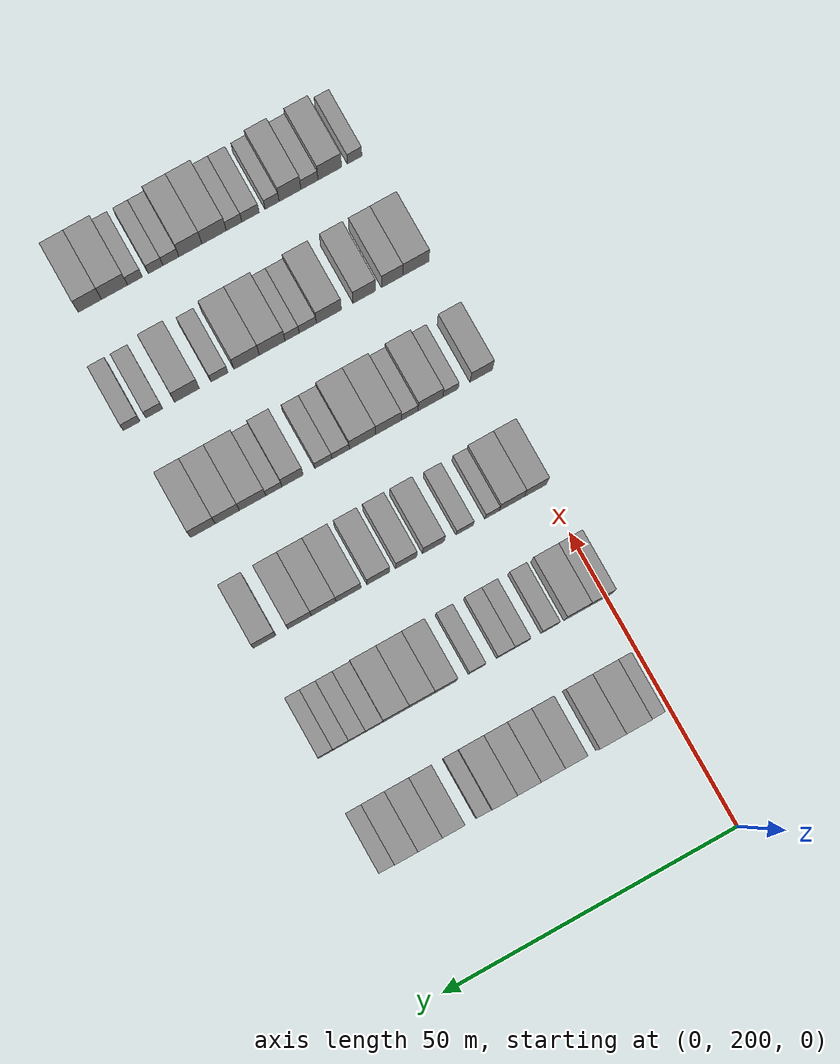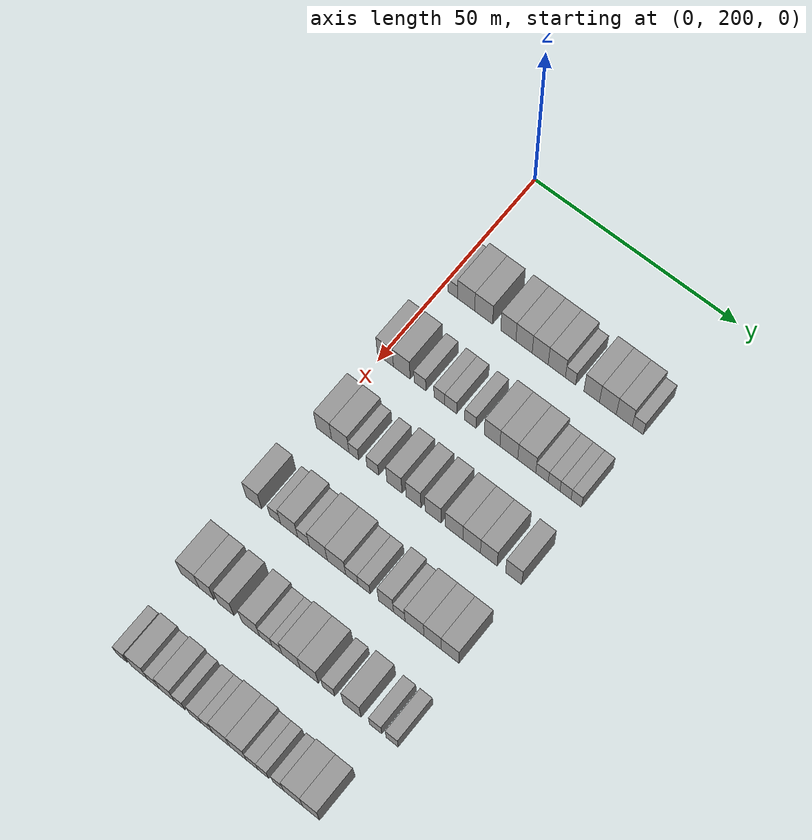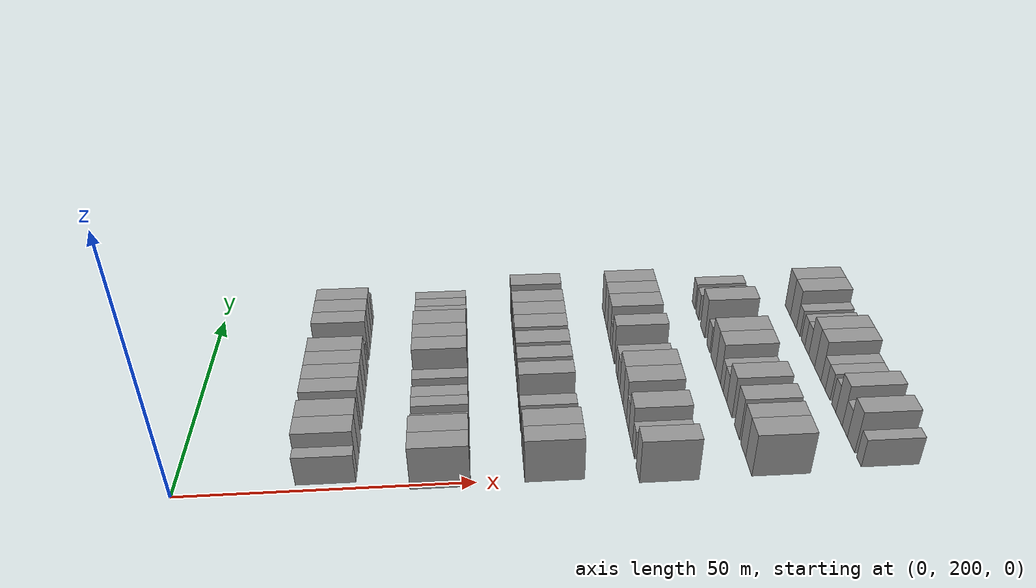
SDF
<sdf version="1.6">
 <world name="default">
  <model name="building_133">
   <static>1</static>
   <pose>25.0000 202.6711 0 0.000000 0.000000 0.000000</pose>
   <link name="link">
    <pose>0 0 3.00 0 0 0</pose>
    <collision name="collision"><geometry><box><size>10.0000 2.4883 6.0000</size></box></geometry></collision>
    <visual name="visual">
     <cast_shadows>0</cast_shadows>
     <geometry><box><size>10.0000 2.4883 6.0000</size></box></geometry>
     <material>
      <script>
       <uri>model://grey_wall/materials/scripts</uri>
       <uri>model://grey_wall/materials/textures</uri>
       <name>vrc/grey_wall</name>
      </script>
     </material>
    </visual>
   </link>
  </model>
  <model name="building_134">
   <static>1</static>
   <pose>25.0000 206.0773 0 0.000000 0.000000 0.000000</pose>
   <link name="link">
    <pose>0 0 4.50 0 0 0</pose>
    <collision name="collision"><geometry><box><size>10.0000 4.3241 9.0000</size></box></geometry></collision>
    <visual name="visual">
     <cast_shadows>0</cast_shadows>
     <geometry><box><size>10.0000 4.3241 9.0000</size></box></geometry>
     <material>
      <script>
       <uri>model://grey_wall/materials/scripts</uri>
       <uri>model://grey_wall/materials/textures</uri>
       <name>vrc/grey_wall</name>
      </script>
     </material>
    </visual>
   </link>
  </model>
  <model name="building_135">
   <static>1</static>
   <pose>25.0000 210.4620 0 0.000000 0.000000 0.000000</pose>
   <link name="link">
    <pose>0 0 4.50 0 0 0</pose>
    <collision name="collision"><geometry><box><size>10.0000 4.4454 9.0000</size></box></geometry></collision>
    <visual name="visual">
     <cast_shadows>0</cast_shadows>
     <geometry><box><size>10.0000 4.4454 9.0000</size></box></geometry>
     <material>
      <script>
       <uri>model://grey_wall/materials/scripts</uri>
       <uri>model://grey_wall/materials/textures</uri>
       <name>vrc/grey_wall</name>
      </script>
     </material>
    </visual>
   </link>
  </model>
  <model name="building_136">
   <static>1</static>
   <pose>25.0000 216.5590 0 0.000000 0.000000 0.000000</pose>
   <link name="link">
    <pose>0 0 4.50 0 0 0</pose>
    <collision name="collision"><geometry><box><size>10.0000 3.7486 9.0000</size></box></geometry></collision>
    <visual name="visual">
     <cast_shadows>0</cast_shadows>
     <geometry><box><size>10.0000 3.7486 9.0000</size></box></geometry>
     <material>
      <script>
       <uri>model://grey_wall/materials/scripts</uri>
       <uri>model://grey_wall/materials/textures</uri>
       <name>vrc/grey_wall</name>
      </script>
     </material>
    </visual>
   </link>
  </model>
  <model name="building_137">
   <static>1</static>
   <pose>25.0000 220.4509 0 0.000000 0.000000 0.000000</pose>
   <link name="link">
    <pose>0 0 4.50 0 0 0</pose>
    <collision name="collision"><geometry><box><size>10.0000 4.0350 9.0000</size></box></geometry></collision>
    <visual name="visual">
     <cast_shadows>0</cast_shadows>
     <geometry><box><size>10.0000 4.0350 9.0000</size></box></geometry>
     <material>
      <script>
       <uri>model://grey_wall/materials/scripts</uri>
       <uri>model://grey_wall/materials/textures</uri>
       <name>vrc/grey_wall</name>
      </script>
     </material>
    </visual>
   </link>
  </model>
  <model name="building_138">
   <static>1</static>
   <pose>25.0000 224.4323 0 0.000000 0.000000 0.000000</pose>
   <link name="link">
    <pose>0 0 4.50 0 0 0</pose>
    <collision name="collision"><geometry><box><size>10.0000 3.9277 9.0000</size></box></geometry></collision>
    <visual name="visual">
     <cast_shadows>0</cast_shadows>
     <geometry><box><size>10.0000 3.9277 9.0000</size></box></geometry>
     <material>
      <script>
       <uri>model://grey_wall/materials/scripts</uri>
       <uri>model://grey_wall/materials/textures</uri>
       <name>vrc/grey_wall</name>
      </script>
     </material>
    </visual>
   </link>
  </model>
  <model name="building_139">
   <static>1</static>
   <pose>25.0000 228.5073 0 0.000000 0.000000 0.000000</pose>
   <link name="link">
    <pose>0 0 4.50 0 0 0</pose>
    <collision name="collision"><geometry><box><size>10.0000 4.2223 9.0000</size></box></geometry></collision>
    <visual name="visual">
     <cast_shadows>0</cast_shadows>
     <geometry><box><size>10.0000 4.2223 9.0000</size></box></geometry>
     <material>
      <script>
       <uri>model://grey_wall/materials/scripts</uri>
       <uri>model://grey_wall/materials/textures</uri>
       <name>vrc/grey_wall</name>
      </script>
     </material>
    </visual>
   </link>
  </model>
  <model name="building_140">
   <static>1</static>
   <pose>25.0000 231.8715 0 0.000000 0.000000 0.000000</pose>
   <link name="link">
    <pose>0 0 3.00 0 0 0</pose>
    <collision name="collision"><geometry><box><size>10.0000 2.5061 6.0000</size></box></geometry></collision>
    <visual name="visual">
     <cast_shadows>0</cast_shadows>
     <geometry><box><size>10.0000 2.5061 6.0000</size></box></geometry>
     <material>
      <script>
       <uri>model://grey_wall/materials/scripts</uri>
       <uri>model://grey_wall/materials/textures</uri>
       <name>vrc/grey_wall</name>
      </script>
     </material>
    </visual>
   </link>
  </model>
  <model name="building_141">
   <static>1</static>
   <pose>25.0000 237.0050 0 0.000000 0.000000 0.000000</pose>
   <link name="link">
    <pose>0 0 4.50 0 0 0</pose>
    <collision name="collision"><geometry><box><size>10.0000 3.7610 9.0000</size></box></geometry></collision>
    <visual name="visual">
     <cast_shadows>0</cast_shadows>
     <geometry><box><size>10.0000 3.7610 9.0000</size></box></geometry>
     <material>
      <script>
       <uri>model://grey_wall/materials/scripts</uri>
       <uri>model://grey_wall/materials/textures</uri>
       <name>vrc/grey_wall</name>
      </script>
     </material>
    </visual>
   </link>
  </model>
  <model name="building_142">
   <static>1</static>
   <pose>25.0000 240.9194 0 0.000000 0.000000 0.000000</pose>
   <link name="link">
    <pose>0 0 4.50 0 0 0</pose>
    <collision name="collision"><geometry><box><size>10.0000 4.0678 9.0000</size></box></geometry></collision>
    <visual name="visual">
     <cast_shadows>0</cast_shadows>
     <geometry><box><size>10.0000 4.0678 9.0000</size></box></geometry>
     <material>
      <script>
       <uri>model://grey_wall/materials/scripts</uri>
       <uri>model://grey_wall/materials/textures</uri>
       <name>vrc/grey_wall</name>
      </script>
     </material>
    </visual>
   </link>
  </model>
  <model name="building_143">
   <static>1</static>
   <pose>25.0000 244.8892 0 0.000000 0.000000 0.000000</pose>
   <link name="link">
    <pose>0 0 4.50 0 0 0</pose>
    <collision name="collision"><geometry><box><size>10.0000 3.8719 9.0000</size></box></geometry></collision>
    <visual name="visual">
     <cast_shadows>0</cast_shadows>
     <geometry><box><size>10.0000 3.8719 9.0000</size></box></geometry>
     <material>
      <script>
       <uri>model://grey_wall/materials/scripts</uri>
       <uri>model://grey_wall/materials/textures</uri>
       <name>vrc/grey_wall</name>
      </script>
     </material>
    </visual>
   </link>
  </model>
  <model name="building_144">
   <static>1</static>
   <pose>25.0000 248.1427 0 0.000000 0.000000 0.000000</pose>
   <link name="link">
    <pose>0 0 3.00 0 0 0</pose>
    <collision name="collision"><geometry><box><size>10.0000 2.6350 6.0000</size></box></geometry></collision>
    <visual name="visual">
     <cast_shadows>0</cast_shadows>
     <geometry><box><size>10.0000 2.6350 6.0000</size></box></geometry>
     <material>
      <script>
       <uri>model://grey_wall/materials/scripts</uri>
       <uri>model://grey_wall/materials/textures</uri>
       <name>vrc/grey_wall</name>
      </script>
     </material>
    </visual>
   </link>
  </model>
  <model name="building_303">
   <static>1</static>
   <pose>44.0000 201.1079 0 0.000000 0.000000 0.000000</pose>
   <link name="link">
    <pose>0 0 4.50 0 0 0</pose>
    <collision name="collision"><geometry><box><size>10.0000 4.0124 9.0000</size></box></geometry></collision>
    <visual name="visual">
     <cast_shadows>0</cast_shadows>
     <geometry><box><size>10.0000 4.0124 9.0000</size></box></geometry>
     <material>
      <script>
       <uri>model://grey_wall/materials/scripts</uri>
       <uri>model://grey_wall/materials/textures</uri>
       <name>vrc/grey_wall</name>
      </script>
     </material>
    </visual>
   </link>
  </model>
  <model name="building_304">
   <static>1</static>
   <pose>44.0000 205.2079 0 0.000000 0.000000 0.000000</pose>
   <link name="link">
    <pose>0 0 4.50 0 0 0</pose>
    <collision name="collision"><geometry><box><size>10.0000 4.1876 9.0000</size></box></geometry></collision>
    <visual name="visual">
     <cast_shadows>0</cast_shadows>
     <geometry><box><size>10.0000 4.1876 9.0000</size></box></geometry>
     <material>
      <script>
       <uri>model://grey_wall/materials/scripts</uri>
       <uri>model://grey_wall/materials/textures</uri>
       <name>vrc/grey_wall</name>
      </script>
     </material>
    </visual>
   </link>
  </model>
  <model name="building_305">
   <static>1</static>
   <pose>44.0000 209.7599 0 0.000000 0.000000 0.000000</pose>
   <link name="link">
    <pose>0 0 3.00 0 0 0</pose>
    <collision name="collision"><geometry><box><size>10.0000 2.9164 6.0000</size></box></geometry></collision>
    <visual name="visual">
     <cast_shadows>0</cast_shadows>
     <geometry><box><size>10.0000 2.9164 6.0000</size></box></geometry>
     <material>
      <script>
       <uri>model://grey_wall/materials/scripts</uri>
       <uri>model://grey_wall/materials/textures</uri>
       <name>vrc/grey_wall</name>
      </script>
     </material>
    </visual>
   </link>
  </model>
  <model name="building_306">
   <static>1</static>
   <pose>44.0000 214.5501 0 0.000000 0.000000 0.000000</pose>
   <link name="link">
    <pose>0 0 3.00 0 0 0</pose>
    <collision name="collision"><geometry><box><size>10.0000 2.6641 6.0000</size></box></geometry></collision>
    <visual name="visual">
     <cast_shadows>0</cast_shadows>
     <geometry><box><size>10.0000 2.6641 6.0000</size></box></geometry>
     <material>
      <script>
       <uri>model://grey_wall/materials/scripts</uri>
       <uri>model://grey_wall/materials/textures</uri>
       <name>vrc/grey_wall</name>
      </script>
     </material>
    </visual>
   </link>
  </model>
  <model name="building_307">
   <static>1</static>
   <pose>44.0000 217.3388 0 0.000000 0.000000 0.000000</pose>
   <link name="link">
    <pose>0 0 3.00 0 0 0</pose>
    <collision name="collision"><geometry><box><size>10.0000 2.9133 6.0000</size></box></geometry></collision>
    <visual name="visual">
     <cast_shadows>0</cast_shadows>
     <geometry><box><size>10.0000 2.9133 6.0000</size></box></geometry>
     <material>
      <script>
       <uri>model://grey_wall/materials/scripts</uri>
       <uri>model://grey_wall/materials/textures</uri>
       <name>vrc/grey_wall</name>
      </script>
     </material>
    </visual>
   </link>
  </model>
  <model name="building_308">
   <static>1</static>
   <pose>44.0000 222.1961 0 0.000000 0.000000 0.000000</pose>
   <link name="link">
    <pose>0 0 3.00 0 0 0</pose>
    <collision name="collision"><geometry><box><size>10.0000 2.8013 6.0000</size></box></geometry></collision>
    <visual name="visual">
     <cast_shadows>0</cast_shadows>
     <geometry><box><size>10.0000 2.8013 6.0000</size></box></geometry>
     <material>
      <script>
       <uri>model://grey_wall/materials/scripts</uri>
       <uri>model://grey_wall/materials/textures</uri>
       <name>vrc/grey_wall</name>
      </script>
     </material>
    </visual>
   </link>
  </model>
  <model name="building_309">
   <static>1</static>
   <pose>44.0000 227.5003 0 0.000000 0.000000 0.000000</pose>
   <link name="link">
    <pose>0 0 4.50 0 0 0</pose>
    <collision name="collision"><geometry><box><size>10.0000 3.8072 9.0000</size></box></geometry></collision>
    <visual name="visual">
     <cast_shadows>0</cast_shadows>
     <geometry><box><size>10.0000 3.8072 9.0000</size></box></geometry>
     <material>
      <script>
       <uri>model://grey_wall/materials/scripts</uri>
       <uri>model://grey_wall/materials/textures</uri>
       <name>vrc/grey_wall</name>
      </script>
     </material>
    </visual>
   </link>
  </model>
  <model name="building_310">
   <static>1</static>
   <pose>44.0000 231.5587 0 0.000000 0.000000 0.000000</pose>
   <link name="link">
    <pose>0 0 4.50 0 0 0</pose>
    <collision name="collision"><geometry><box><size>10.0000 4.3096 9.0000</size></box></geometry></collision>
    <visual name="visual">
     <cast_shadows>0</cast_shadows>
     <geometry><box><size>10.0000 4.3096 9.0000</size></box></geometry>
     <material>
      <script>
       <uri>model://grey_wall/materials/scripts</uri>
       <uri>model://grey_wall/materials/textures</uri>
       <name>vrc/grey_wall</name>
      </script>
     </material>
    </visual>
   </link>
  </model>
  <model name="building_311">
   <static>1</static>
   <pose>44.0000 235.8944 0 0.000000 0.000000 0.000000</pose>
   <link name="link">
    <pose>0 0 4.50 0 0 0</pose>
    <collision name="collision"><geometry><box><size>10.0000 4.3618 9.0000</size></box></geometry></collision>
    <visual name="visual">
     <cast_shadows>0</cast_shadows>
     <geometry><box><size>10.0000 4.3618 9.0000</size></box></geometry>
     <material>
      <script>
       <uri>model://grey_wall/materials/scripts</uri>
       <uri>model://grey_wall/materials/textures</uri>
       <name>vrc/grey_wall</name>
      </script>
     </material>
    </visual>
   </link>
  </model>
  <model name="building_312">
   <static>1</static>
   <pose>44.0000 239.5666 0 0.000000 0.000000 0.000000</pose>
   <link name="link">
    <pose>0 0 3.00 0 0 0</pose>
    <collision name="collision"><geometry><box><size>10.0000 2.9827 6.0000</size></box></geometry></collision>
    <visual name="visual">
     <cast_shadows>0</cast_shadows>
     <geometry><box><size>10.0000 2.9827 6.0000</size></box></geometry>
     <material>
      <script>
       <uri>model://grey_wall/materials/scripts</uri>
       <uri>model://grey_wall/materials/textures</uri>
       <name>vrc/grey_wall</name>
      </script>
     </material>
    </visual>
   </link>
  </model>
  <model name="building_313">
   <static>1</static>
   <pose>44.0000 242.4702 0 0.000000 0.000000 0.000000</pose>
   <link name="link">
    <pose>0 0 3.00 0 0 0</pose>
    <collision name="collision"><geometry><box><size>10.0000 2.8244 6.0000</size></box></geometry></collision>
    <visual name="visual">
     <cast_shadows>0</cast_shadows>
     <geometry><box><size>10.0000 2.8244 6.0000</size></box></geometry>
     <material>
      <script>
       <uri>model://grey_wall/materials/scripts</uri>
       <uri>model://grey_wall/materials/textures</uri>
       <name>vrc/grey_wall</name>
      </script>
     </material>
    </visual>
   </link>
  </model>
  <model name="building_314">
   <static>1</static>
   <pose>44.0000 245.2098 0 0.000000 0.000000 0.000000</pose>
   <link name="link">
    <pose>0 0 3.00 0 0 0</pose>
    <collision name="collision"><geometry><box><size>10.0000 2.6549 6.0000</size></box></geometry></collision>
    <visual name="visual">
     <cast_shadows>0</cast_shadows>
     <geometry><box><size>10.0000 2.6549 6.0000</size></box></geometry>
     <material>
      <script>
       <uri>model://grey_wall/materials/scripts</uri>
       <uri>model://grey_wall/materials/textures</uri>
       <name>vrc/grey_wall</name>
      </script>
     </material>
    </visual>
   </link>
  </model>
  <model name="building_315">
   <static>1</static>
   <pose>44.0000 247.7733 0 0.000000 0.000000 0.000000</pose>
   <link name="link">
    <pose>0 0 3.00 0 0 0</pose>
    <collision name="collision"><geometry><box><size>10.0000 2.4720 6.0000</size></box></geometry></collision>
    <visual name="visual">
     <cast_shadows>0</cast_shadows>
     <geometry><box><size>10.0000 2.4720 6.0000</size></box></geometry>
     <material>
      <script>
       <uri>model://grey_wall/materials/scripts</uri>
       <uri>model://grey_wall/materials/textures</uri>
       <name>vrc/grey_wall</name>
      </script>
     </material>
    </visual>
   </link>
  </model>
  <model name="building_486">
   <static>1</static>
   <pose>63.0000 201.4078 0 0.000000 0.000000 0.000000</pose>
   <link name="link">
    <pose>0 0 4.50 0 0 0</pose>
    <collision name="collision"><geometry><box><size>10.0000 3.8043 9.0000</size></box></geometry></collision>
    <visual name="visual">
     <cast_shadows>0</cast_shadows>
     <geometry><box><size>10.0000 3.8043 9.0000</size></box></geometry>
     <material>
      <script>
       <uri>model://grey_wall/materials/scripts</uri>
       <uri>model://grey_wall/materials/textures</uri>
       <name>vrc/grey_wall</name>
      </script>
     </material>
    </visual>
   </link>
  </model>
  <model name="building_487">
   <static>1</static>
   <pose>63.0000 205.4745 0 0.000000 0.000000 0.000000</pose>
   <link name="link">
    <pose>0 0 4.50 0 0 0</pose>
    <collision name="collision"><geometry><box><size>10.0000 4.3293 9.0000</size></box></geometry></collision>
    <visual name="visual">
     <cast_shadows>0</cast_shadows>
     <geometry><box><size>10.0000 4.3293 9.0000</size></box></geometry>
     <material>
      <script>
       <uri>model://grey_wall/materials/scripts</uri>
       <uri>model://grey_wall/materials/textures</uri>
       <name>vrc/grey_wall</name>
      </script>
     </material>
    </visual>
   </link>
  </model>
  <model name="building_488">
   <static>1</static>
   <pose>63.0000 208.8492 0 0.000000 0.000000 0.000000</pose>
   <link name="link">
    <pose>0 0 3.00 0 0 0</pose>
    <collision name="collision"><geometry><box><size>10.0000 2.4201 6.0000</size></box></geometry></collision>
    <visual name="visual">
     <cast_shadows>0</cast_shadows>
     <geometry><box><size>10.0000 2.4201 6.0000</size></box></geometry>
     <material>
      <script>
       <uri>model://grey_wall/materials/scripts</uri>
       <uri>model://grey_wall/materials/textures</uri>
       <name>vrc/grey_wall</name>
      </script>
     </material>
    </visual>
   </link>
  </model>
  <model name="building_489">
   <static>1</static>
   <pose>63.0000 213.5295 0 0.000000 0.000000 0.000000</pose>
   <link name="link">
    <pose>0 0 3.00 0 0 0</pose>
    <collision name="collision"><geometry><box><size>10.0000 2.9405 6.0000</size></box></geometry></collision>
    <visual name="visual">
     <cast_shadows>0</cast_shadows>
     <geometry><box><size>10.0000 2.9405 6.0000</size></box></geometry>
     <material>
      <script>
       <uri>model://grey_wall/materials/scripts</uri>
       <uri>model://grey_wall/materials/textures</uri>
       <name>vrc/grey_wall</name>
      </script>
     </material>
    </visual>
   </link>
  </model>
  <model name="building_490">
   <static>1</static>
   <pose>63.0000 218.8588 0 0.000000 0.000000 0.000000</pose>
   <link name="link">
    <pose>0 0 4.50 0 0 0</pose>
    <collision name="collision"><geometry><box><size>10.0000 3.7180 9.0000</size></box></geometry></collision>
    <visual name="visual">
     <cast_shadows>0</cast_shadows>
     <geometry><box><size>10.0000 3.7180 9.0000</size></box></geometry>
     <material>
      <script>
       <uri>model://grey_wall/materials/scripts</uri>
       <uri>model://grey_wall/materials/textures</uri>
       <name>vrc/grey_wall</name>
      </script>
     </material>
    </visual>
   </link>
  </model>
  <model name="building_491">
   <static>1</static>
   <pose>63.0000 223.5201 0 0.000000 0.000000 0.000000</pose>
   <link name="link">
    <pose>0 0 4.50 0 0 0</pose>
    <collision name="collision"><geometry><box><size>10.0000 3.6046 9.0000</size></box></geometry></collision>
    <visual name="visual">
     <cast_shadows>0</cast_shadows>
     <geometry><box><size>10.0000 3.6046 9.0000</size></box></geometry>
     <material>
      <script>
       <uri>model://grey_wall/materials/scripts</uri>
       <uri>model://grey_wall/materials/textures</uri>
       <name>vrc/grey_wall</name>
      </script>
     </material>
    </visual>
   </link>
  </model>
  <model name="building_492">
   <static>1</static>
   <pose>63.0000 228.2606 0 0.000000 0.000000 0.000000</pose>
   <link name="link">
    <pose>0 0 4.50 0 0 0</pose>
    <collision name="collision"><geometry><box><size>10.0000 3.8765 9.0000</size></box></geometry></collision>
    <visual name="visual">
     <cast_shadows>0</cast_shadows>
     <geometry><box><size>10.0000 3.8765 9.0000</size></box></geometry>
     <material>
      <script>
       <uri>model://grey_wall/materials/scripts</uri>
       <uri>model://grey_wall/materials/textures</uri>
       <name>vrc/grey_wall</name>
      </script>
     </material>
    </visual>
   </link>
  </model>
  <model name="building_493">
   <static>1</static>
   <pose>63.0000 233.3235 0 0.000000 0.000000 0.000000</pose>
   <link name="link">
    <pose>0 0 4.50 0 0 0</pose>
    <collision name="collision"><geometry><box><size>10.0000 4.2493 9.0000</size></box></geometry></collision>
    <visual name="visual">
     <cast_shadows>0</cast_shadows>
     <geometry><box><size>10.0000 4.2493 9.0000</size></box></geometry>
     <material>
      <script>
       <uri>model://grey_wall/materials/scripts</uri>
       <uri>model://grey_wall/materials/textures</uri>
       <name>vrc/grey_wall</name>
      </script>
     </material>
    </visual>
   </link>
  </model>
  <model name="building_494">
   <static>1</static>
   <pose>63.0000 237.5586 0 0.000000 0.000000 0.000000</pose>
   <link name="link">
    <pose>0 0 4.50 0 0 0</pose>
    <collision name="collision"><geometry><box><size>10.0000 4.2208 9.0000</size></box></geometry></collision>
    <visual name="visual">
     <cast_shadows>0</cast_shadows>
     <geometry><box><size>10.0000 4.2208 9.0000</size></box></geometry>
     <material>
      <script>
       <uri>model://grey_wall/materials/scripts</uri>
       <uri>model://grey_wall/materials/textures</uri>
       <name>vrc/grey_wall</name>
      </script>
     </material>
    </visual>
   </link>
  </model>
  <model name="building_495">
   <static>1</static>
   <pose>63.0000 241.6664 0 0.000000 0.000000 0.000000</pose>
   <link name="link">
    <pose>0 0 4.50 0 0 0</pose>
    <collision name="collision"><geometry><box><size>10.0000 3.9949 9.0000</size></box></geometry></collision>
    <visual name="visual">
     <cast_shadows>0</cast_shadows>
     <geometry><box><size>10.0000 3.9949 9.0000</size></box></geometry>
     <material>
      <script>
       <uri>model://grey_wall/materials/scripts</uri>
       <uri>model://grey_wall/materials/textures</uri>
       <name>vrc/grey_wall</name>
      </script>
     </material>
    </visual>
   </link>
  </model>
  <model name="building_496">
   <static>1</static>
   <pose>63.0000 247.5742 0 0.000000 0.000000 0.000000</pose>
   <link name="link">
    <pose>0 0 4.50 0 0 0</pose>
    <collision name="collision"><geometry><box><size>10.0000 3.8206 9.0000</size></box></geometry></collision>
    <visual name="visual">
     <cast_shadows>0</cast_shadows>
     <geometry><box><size>10.0000 3.8206 9.0000</size></box></geometry>
     <material>
      <script>
       <uri>model://grey_wall/materials/scripts</uri>
       <uri>model://grey_wall/materials/textures</uri>
       <name>vrc/grey_wall</name>
      </script>
     </material>
    </visual>
   </link>
  </model>
  <model name="building_663">
   <static>1</static>
   <pose>82.0000 199.9631 0 0.000000 0.000000 0.000000</pose>
   <link name="link">
    <pose>0 0 4.50 0 0 0</pose>
    <collision name="collision"><geometry><box><size>10.0000 3.8463 9.0000</size></box></geometry></collision>
    <visual name="visual">
     <cast_shadows>0</cast_shadows>
     <geometry><box><size>10.0000 3.8463 9.0000</size></box></geometry>
     <material>
      <script>
       <uri>model://grey_wall/materials/scripts</uri>
       <uri>model://grey_wall/materials/textures</uri>
       <name>vrc/grey_wall</name>
      </script>
     </material>
    </visual>
   </link>
  </model>
  <model name="building_664">
   <static>1</static>
   <pose>82.0000 205.2267 0 0.000000 0.000000 0.000000</pose>
   <link name="link">
    <pose>0 0 3.00 0 0 0</pose>
    <collision name="collision"><geometry><box><size>10.0000 2.6810 6.0000</size></box></geometry></collision>
    <visual name="visual">
     <cast_shadows>0</cast_shadows>
     <geometry><box><size>10.0000 2.6810 6.0000</size></box></geometry>
     <material>
      <script>
       <uri>model://grey_wall/materials/scripts</uri>
       <uri>model://grey_wall/materials/textures</uri>
       <name>vrc/grey_wall</name>
      </script>
     </material>
    </visual>
   </link>
  </model>
  <model name="building_665">
   <static>1</static>
   <pose>82.0000 208.6943 0 0.000000 0.000000 0.000000</pose>
   <link name="link">
    <pose>0 0 4.50 0 0 0</pose>
    <collision name="collision"><geometry><box><size>10.0000 4.2542 9.0000</size></box></geometry></collision>
    <visual name="visual">
     <cast_shadows>0</cast_shadows>
     <geometry><box><size>10.0000 4.2542 9.0000</size></box></geometry>
     <material>
      <script>
       <uri>model://grey_wall/materials/scripts</uri>
       <uri>model://grey_wall/materials/textures</uri>
       <name>vrc/grey_wall</name>
      </script>
     </material>
    </visual>
   </link>
  </model>
  <model name="building_666">
   <static>1</static>
   <pose>82.0000 212.2488 0 0.000000 0.000000 0.000000</pose>
   <link name="link">
    <pose>0 0 3.00 0 0 0</pose>
    <collision name="collision"><geometry><box><size>10.0000 2.8547 6.0000</size></box></geometry></collision>
    <visual name="visual">
     <cast_shadows>0</cast_shadows>
     <geometry><box><size>10.0000 2.8547 6.0000</size></box></geometry>
     <material>
      <script>
       <uri>model://grey_wall/materials/scripts</uri>
       <uri>model://grey_wall/materials/textures</uri>
       <name>vrc/grey_wall</name>
      </script>
     </material>
    </visual>
   </link>
  </model>
  <model name="building_667">
   <static>1</static>
   <pose>82.0000 215.8715 0 0.000000 0.000000 0.000000</pose>
   <link name="link">
    <pose>0 0 4.50 0 0 0</pose>
    <collision name="collision"><geometry><box><size>10.0000 4.3908 9.0000</size></box></geometry></collision>
    <visual name="visual">
     <cast_shadows>0</cast_shadows>
     <geometry><box><size>10.0000 4.3908 9.0000</size></box></geometry>
     <material>
      <script>
       <uri>model://grey_wall/materials/scripts</uri>
       <uri>model://grey_wall/materials/textures</uri>
       <name>vrc/grey_wall</name>
      </script>
     </material>
    </visual>
   </link>
  </model>
  <model name="building_668">
   <static>1</static>
   <pose>82.0000 220.3164 0 0.000000 0.000000 0.000000</pose>
   <link name="link">
    <pose>0 0 4.50 0 0 0</pose>
    <collision name="collision"><geometry><box><size>10.0000 4.4990 9.0000</size></box></geometry></collision>
    <visual name="visual">
     <cast_shadows>0</cast_shadows>
     <geometry><box><size>10.0000 4.4990 9.0000</size></box></geometry>
     <material>
      <script>
       <uri>model://grey_wall/materials/scripts</uri>
       <uri>model://grey_wall/materials/textures</uri>
       <name>vrc/grey_wall</name>
      </script>
     </material>
    </visual>
   </link>
  </model>
  <model name="building_669">
   <static>1</static>
   <pose>82.0000 224.0597 0 0.000000 0.000000 0.000000</pose>
   <link name="link">
    <pose>0 0 3.00 0 0 0</pose>
    <collision name="collision"><geometry><box><size>10.0000 2.9876 6.0000</size></box></geometry></collision>
    <visual name="visual">
     <cast_shadows>0</cast_shadows>
     <geometry><box><size>10.0000 2.9876 6.0000</size></box></geometry>
     <material>
      <script>
       <uri>model://grey_wall/materials/scripts</uri>
       <uri>model://grey_wall/materials/textures</uri>
       <name>vrc/grey_wall</name>
      </script>
     </material>
    </visual>
   </link>
  </model>
  <model name="building_670">
   <static>1</static>
   <pose>82.0000 227.0129 0 0.000000 0.000000 0.000000</pose>
   <link name="link">
    <pose>0 0 3.00 0 0 0</pose>
    <collision name="collision"><geometry><box><size>10.0000 2.9188 6.0000</size></box></geometry></collision>
    <visual name="visual">
     <cast_shadows>0</cast_shadows>
     <geometry><box><size>10.0000 2.9188 6.0000</size></box></geometry>
     <material>
      <script>
       <uri>model://grey_wall/materials/scripts</uri>
       <uri>model://grey_wall/materials/textures</uri>
       <name>vrc/grey_wall</name>
      </script>
     </material>
    </visual>
   </link>
  </model>
  <model name="building_671">
   <static>1</static>
   <pose>82.0000 232.2809 0 0.000000 0.000000 0.000000</pose>
   <link name="link">
    <pose>0 0 4.50 0 0 0</pose>
    <collision name="collision"><geometry><box><size>10.0000 3.6173 9.0000</size></box></geometry></collision>
    <visual name="visual">
     <cast_shadows>0</cast_shadows>
     <geometry><box><size>10.0000 3.6173 9.0000</size></box></geometry>
     <material>
      <script>
       <uri>model://grey_wall/materials/scripts</uri>
       <uri>model://grey_wall/materials/textures</uri>
       <name>vrc/grey_wall</name>
      </script>
     </material>
    </visual>
   </link>
  </model>
  <model name="building_672">
   <static>1</static>
   <pose>82.0000 235.4722 0 0.000000 0.000000 0.000000</pose>
   <link name="link">
    <pose>0 0 3.00 0 0 0</pose>
    <collision name="collision"><geometry><box><size>10.0000 2.7652 6.0000</size></box></geometry></collision>
    <visual name="visual">
     <cast_shadows>0</cast_shadows>
     <geometry><box><size>10.0000 2.7652 6.0000</size></box></geometry>
     <material>
      <script>
       <uri>model://grey_wall/materials/scripts</uri>
       <uri>model://grey_wall/materials/textures</uri>
       <name>vrc/grey_wall</name>
      </script>
     </material>
    </visual>
   </link>
  </model>
  <model name="building_673">
   <static>1</static>
   <pose>82.0000 239.1030 0 0.000000 0.000000 0.000000</pose>
   <link name="link">
    <pose>0 0 4.50 0 0 0</pose>
    <collision name="collision"><geometry><box><size>10.0000 4.4964 9.0000</size></box></geometry></collision>
    <visual name="visual">
     <cast_shadows>0</cast_shadows>
     <geometry><box><size>10.0000 4.4964 9.0000</size></box></geometry>
     <material>
      <script>
       <uri>model://grey_wall/materials/scripts</uri>
       <uri>model://grey_wall/materials/textures</uri>
       <name>vrc/grey_wall</name>
      </script>
     </material>
    </visual>
   </link>
  </model>
  <model name="building_674">
   <static>1</static>
   <pose>82.0000 243.4031 0 0.000000 0.000000 0.000000</pose>
   <link name="link">
    <pose>0 0 4.50 0 0 0</pose>
    <collision name="collision"><geometry><box><size>10.0000 4.1038 9.0000</size></box></geometry></collision>
    <visual name="visual">
     <cast_shadows>0</cast_shadows>
     <geometry><box><size>10.0000 4.1038 9.0000</size></box></geometry>
     <material>
      <script>
       <uri>model://grey_wall/materials/scripts</uri>
       <uri>model://grey_wall/materials/textures</uri>
       <name>vrc/grey_wall</name>
      </script>
     </material>
    </visual>
   </link>
  </model>
  <model name="building_675">
   <static>1</static>
   <pose>82.0000 247.5528 0 0.000000 0.000000 0.000000</pose>
   <link name="link">
    <pose>0 0 4.50 0 0 0</pose>
    <collision name="collision"><geometry><box><size>10.0000 4.1956 9.0000</size></box></geometry></collision>
    <visual name="visual">
     <cast_shadows>0</cast_shadows>
     <geometry><box><size>10.0000 4.1956 9.0000</size></box></geometry>
     <material>
      <script>
       <uri>model://grey_wall/materials/scripts</uri>
       <uri>model://grey_wall/materials/textures</uri>
       <name>vrc/grey_wall</name>
      </script>
     </material>
    </visual>
   </link>
  </model>
  <model name="building_832">
   <static>1</static>
   <pose>101.0000 200.5146 0 0.000000 0.000000 0.000000</pose>
   <link name="link">
    <pose>0 0 4.50 0 0 0</pose>
    <collision name="collision"><geometry><box><size>10.0000 4.4824 9.0000</size></box></geometry></collision>
    <visual name="visual">
     <cast_shadows>0</cast_shadows>
     <geometry><box><size>10.0000 4.4824 9.0000</size></box></geometry>
     <material>
      <script>
       <uri>model://grey_wall/materials/scripts</uri>
       <uri>model://grey_wall/materials/textures</uri>
       <name>vrc/grey_wall</name>
      </script>
     </material>
    </visual>
   </link>
  </model>
  <model name="building_833">
   <static>1</static>
   <pose>101.0000 204.5877 0 0.000000 0.000000 0.000000</pose>
   <link name="link">
    <pose>0 0 4.50 0 0 0</pose>
    <collision name="collision"><geometry><box><size>10.0000 3.6638 9.0000</size></box></geometry></collision>
    <visual name="visual">
     <cast_shadows>0</cast_shadows>
     <geometry><box><size>10.0000 3.6638 9.0000</size></box></geometry>
     <material>
      <script>
       <uri>model://grey_wall/materials/scripts</uri>
       <uri>model://grey_wall/materials/textures</uri>
       <name>vrc/grey_wall</name>
      </script>
     </material>
    </visual>
   </link>
  </model>
  <model name="building_834">
   <static>1</static>
   <pose>101.0000 209.3695 0 0.000000 0.000000 0.000000</pose>
   <link name="link">
    <pose>0 0 4.50 0 0 0</pose>
    <collision name="collision"><geometry><box><size>10.0000 3.8999 9.0000</size></box></geometry></collision>
    <visual name="visual">
     <cast_shadows>0</cast_shadows>
     <geometry><box><size>10.0000 3.8999 9.0000</size></box></geometry>
     <material>
      <script>
       <uri>model://grey_wall/materials/scripts</uri>
       <uri>model://grey_wall/materials/textures</uri>
       <name>vrc/grey_wall</name>
      </script>
     </material>
    </visual>
   </link>
  </model>
  <model name="building_835">
   <static>1</static>
   <pose>101.0000 215.4580 0 0.000000 0.000000 0.000000</pose>
   <link name="link">
    <pose>0 0 4.50 0 0 0</pose>
    <collision name="collision"><geometry><box><size>10.0000 4.2771 9.0000</size></box></geometry></collision>
    <visual name="visual">
     <cast_shadows>0</cast_shadows>
     <geometry><box><size>10.0000 4.2771 9.0000</size></box></geometry>
     <material>
      <script>
       <uri>model://grey_wall/materials/scripts</uri>
       <uri>model://grey_wall/materials/textures</uri>
       <name>vrc/grey_wall</name>
      </script>
     </material>
    </visual>
   </link>
  </model>
  <model name="building_836">
   <static>1</static>
   <pose>101.0000 219.0809 0 0.000000 0.000000 0.000000</pose>
   <link name="link">
    <pose>0 0 3.00 0 0 0</pose>
    <collision name="collision"><geometry><box><size>10.0000 2.9687 6.0000</size></box></geometry></collision>
    <visual name="visual">
     <cast_shadows>0</cast_shadows>
     <geometry><box><size>10.0000 2.9687 6.0000</size></box></geometry>
     <material>
      <script>
       <uri>model://grey_wall/materials/scripts</uri>
       <uri>model://grey_wall/materials/textures</uri>
       <name>vrc/grey_wall</name>
      </script>
     </material>
    </visual>
   </link>
  </model>
  <model name="building_837">
   <static>1</static>
   <pose>101.0000 221.7885 0 0.000000 0.000000 0.000000</pose>
   <link name="link">
    <pose>0 0 3.00 0 0 0</pose>
    <collision name="collision"><geometry><box><size>10.0000 2.4465 6.0000</size></box></geometry></collision>
    <visual name="visual">
     <cast_shadows>0</cast_shadows>
     <geometry><box><size>10.0000 2.4465 6.0000</size></box></geometry>
     <material>
      <script>
       <uri>model://grey_wall/materials/scripts</uri>
       <uri>model://grey_wall/materials/textures</uri>
       <name>vrc/grey_wall</name>
      </script>
     </material>
    </visual>
   </link>
  </model>
  <model name="building_838">
   <static>1</static>
   <pose>101.0000 225.2068 0 0.000000 0.000000 0.000000</pose>
   <link name="link">
    <pose>0 0 4.50 0 0 0</pose>
    <collision name="collision"><geometry><box><size>10.0000 4.3901 9.0000</size></box></geometry></collision>
    <visual name="visual">
     <cast_shadows>0</cast_shadows>
     <geometry><box><size>10.0000 4.3901 9.0000</size></box></geometry>
     <material>
      <script>
       <uri>model://grey_wall/materials/scripts</uri>
       <uri>model://grey_wall/materials/textures</uri>
       <name>vrc/grey_wall</name>
      </script>
     </material>
    </visual>
   </link>
  </model>
  <model name="building_839">
   <static>1</static>
   <pose>101.0000 229.5811 0 0.000000 0.000000 0.000000</pose>
   <link name="link">
    <pose>0 0 4.50 0 0 0</pose>
    <collision name="collision"><geometry><box><size>10.0000 4.3585 9.0000</size></box></geometry></collision>
    <visual name="visual">
     <cast_shadows>0</cast_shadows>
     <geometry><box><size>10.0000 4.3585 9.0000</size></box></geometry>
     <material>
      <script>
       <uri>model://grey_wall/materials/scripts</uri>
       <uri>model://grey_wall/materials/textures</uri>
       <name>vrc/grey_wall</name>
      </script>
     </material>
    </visual>
   </link>
  </model>
  <model name="building_840">
   <static>1</static>
   <pose>101.0000 234.2176 0 0.000000 0.000000 0.000000</pose>
   <link name="link">
    <pose>0 0 3.00 0 0 0</pose>
    <collision name="collision"><geometry><box><size>10.0000 2.9144 6.0000</size></box></geometry></collision>
    <visual name="visual">
     <cast_shadows>0</cast_shadows>
     <geometry><box><size>10.0000 2.9144 6.0000</size></box></geometry>
     <material>
      <script>
       <uri>model://grey_wall/materials/scripts</uri>
       <uri>model://grey_wall/materials/textures</uri>
       <name>vrc/grey_wall</name>
      </script>
     </material>
    </visual>
   </link>
  </model>
  <model name="building_841">
   <static>1</static>
   <pose>101.0000 239.8007 0 0.000000 0.000000 0.000000</pose>
   <link name="link">
    <pose>0 0 4.50 0 0 0</pose>
    <collision name="collision"><geometry><box><size>10.0000 4.2518 9.0000</size></box></geometry></collision>
    <visual name="visual">
     <cast_shadows>0</cast_shadows>
     <geometry><box><size>10.0000 4.2518 9.0000</size></box></geometry>
     <material>
      <script>
       <uri>model://grey_wall/materials/scripts</uri>
       <uri>model://grey_wall/materials/textures</uri>
       <name>vrc/grey_wall</name>
      </script>
     </material>
    </visual>
   </link>
  </model>
  <model name="building_842">
   <static>1</static>
   <pose>101.0000 245.3694 0 0.000000 0.000000 0.000000</pose>
   <link name="link">
    <pose>0 0 3.00 0 0 0</pose>
    <collision name="collision"><geometry><box><size>10.0000 2.8856 6.0000</size></box></geometry></collision>
    <visual name="visual">
     <cast_shadows>0</cast_shadows>
     <geometry><box><size>10.0000 2.8856 6.0000</size></box></geometry>
     <material>
      <script>
       <uri>model://grey_wall/materials/scripts</uri>
       <uri>model://grey_wall/materials/textures</uri>
       <name>vrc/grey_wall</name>
      </script>
     </material>
    </visual>
   </link>
  </model>
  <model name="building_843">
   <static>1</static>
   <pose>101.0000 249.2357 0 0.000000 0.000000 0.000000</pose>
   <link name="link">
    <pose>0 0 3.00 0 0 0</pose>
    <collision name="collision"><geometry><box><size>10.0000 2.8469 6.0000</size></box></geometry></collision>
    <visual name="visual">
     <cast_shadows>0</cast_shadows>
     <geometry><box><size>10.0000 2.8469 6.0000</size></box></geometry>
     <material>
      <script>
       <uri>model://grey_wall/materials/scripts</uri>
       <uri>model://grey_wall/materials/textures</uri>
       <name>vrc/grey_wall</name>
      </script>
     </material>
    </visual>
   </link>
  </model>
  <model name="building_1013">
   <static>1</static>
   <pose>120.0000 200.4327 0 0.000000 0.000000 0.000000</pose>
   <link name="link">
    <pose>0 0 3.00 0 0 0</pose>
    <collision name="collision"><geometry><box><size>10.0000 2.4955 6.0000</size></box></geometry></collision>
    <visual name="visual">
     <cast_shadows>0</cast_shadows>
     <geometry><box><size>10.0000 2.4955 6.0000</size></box></geometry>
     <material>
      <script>
       <uri>model://grey_wall/materials/scripts</uri>
       <uri>model://grey_wall/materials/textures</uri>
       <name>vrc/grey_wall</name>
      </script>
     </material>
    </visual>
   </link>
  </model>
  <model name="building_1014">
   <static>1</static>
   <pose>120.0000 204.7116 0 0.000000 0.000000 0.000000</pose>
   <link name="link">
    <pose>0 0 4.50 0 0 0</pose>
    <collision name="collision"><geometry><box><size>10.0000 4.0623 9.0000</size></box></geometry></collision>
    <visual name="visual">
     <cast_shadows>0</cast_shadows>
     <geometry><box><size>10.0000 4.0623 9.0000</size></box></geometry>
     <material>
      <script>
       <uri>model://grey_wall/materials/scripts</uri>
       <uri>model://grey_wall/materials/textures</uri>
       <name>vrc/grey_wall</name>
      </script>
     </material>
    </visual>
   </link>
  </model>
  <model name="building_1015">
   <static>1</static>
   <pose>120.0000 208.2157 0 0.000000 0.000000 0.000000</pose>
   <link name="link">
    <pose>0 0 3.00 0 0 0</pose>
    <collision name="collision"><geometry><box><size>10.0000 2.9458 6.0000</size></box></geometry></collision>
    <visual name="visual">
     <cast_shadows>0</cast_shadows>
     <geometry><box><size>10.0000 2.9458 6.0000</size></box></geometry>
     <material>
      <script>
       <uri>model://grey_wall/materials/scripts</uri>
       <uri>model://grey_wall/materials/textures</uri>
       <name>vrc/grey_wall</name>
      </script>
     </material>
    </visual>
   </link>
  </model>
  <model name="building_1016">
   <static>1</static>
   <pose>120.0000 211.5646 0 0.000000 0.000000 0.000000</pose>
   <link name="link">
    <pose>0 0 4.50 0 0 0</pose>
    <collision name="collision"><geometry><box><size>10.0000 3.7520 9.0000</size></box></geometry></collision>
    <visual name="visual">
     <cast_shadows>0</cast_shadows>
     <geometry><box><size>10.0000 3.7520 9.0000</size></box></geometry>
     <material>
      <script>
       <uri>model://grey_wall/materials/scripts</uri>
       <uri>model://grey_wall/materials/textures</uri>
       <name>vrc/grey_wall</name>
      </script>
     </material>
    </visual>
   </link>
  </model>
  <model name="building_1017">
   <static>1</static>
   <pose>120.0000 214.6643 0 0.000000 0.000000 0.000000</pose>
   <link name="link">
    <pose>0 0 3.00 0 0 0</pose>
    <collision name="collision"><geometry><box><size>10.0000 2.4473 6.0000</size></box></geometry></collision>
    <visual name="visual">
     <cast_shadows>0</cast_shadows>
     <geometry><box><size>10.0000 2.4473 6.0000</size></box></geometry>
     <material>
      <script>
       <uri>model://grey_wall/materials/scripts</uri>
       <uri>model://grey_wall/materials/textures</uri>
       <name>vrc/grey_wall</name>
      </script>
     </material>
    </visual>
   </link>
  </model>
  <model name="building_1018">
   <static>1</static>
   <pose>120.0000 218.3798 0 0.000000 0.000000 0.000000</pose>
   <link name="link">
    <pose>0 0 3.00 0 0 0</pose>
    <collision name="collision"><geometry><box><size>10.0000 2.9837 6.0000</size></box></geometry></collision>
    <visual name="visual">
     <cast_shadows>0</cast_shadows>
     <geometry><box><size>10.0000 2.9837 6.0000</size></box></geometry>
     <material>
      <script>
       <uri>model://grey_wall/materials/scripts</uri>
       <uri>model://grey_wall/materials/textures</uri>
       <name>vrc/grey_wall</name>
      </script>
     </material>
    </visual>
   </link>
  </model>
  <model name="building_1019">
   <static>1</static>
   <pose>120.0000 221.2144 0 0.000000 0.000000 0.000000</pose>
   <link name="link">
    <pose>0 0 3.00 0 0 0</pose>
    <collision name="collision"><geometry><box><size>10.0000 2.6855 6.0000</size></box></geometry></collision>
    <visual name="visual">
     <cast_shadows>0</cast_shadows>
     <geometry><box><size>10.0000 2.6855 6.0000</size></box></geometry>
     <material>
      <script>
       <uri>model://grey_wall/materials/scripts</uri>
       <uri>model://grey_wall/materials/textures</uri>
       <name>vrc/grey_wall</name>
      </script>
     </material>
    </visual>
   </link>
  </model>
  <model name="building_1020">
   <static>1</static>
   <pose>120.0000 224.6488 0 0.000000 0.000000 0.000000</pose>
   <link name="link">
    <pose>0 0 4.50 0 0 0</pose>
    <collision name="collision"><geometry><box><size>10.0000 4.1834 9.0000</size></box></geometry></collision>
    <visual name="visual">
     <cast_shadows>0</cast_shadows>
     <geometry><box><size>10.0000 4.1834 9.0000</size></box></geometry>
     <material>
      <script>
       <uri>model://grey_wall/materials/scripts</uri>
       <uri>model://grey_wall/materials/textures</uri>
       <name>vrc/grey_wall</name>
      </script>
     </material>
    </visual>
   </link>
  </model>
  <model name="building_1021">
   <static>1</static>
   <pose>120.0000 228.7118 0 0.000000 0.000000 0.000000</pose>
   <link name="link">
    <pose>0 0 4.50 0 0 0</pose>
    <collision name="collision"><geometry><box><size>10.0000 3.9425 9.0000</size></box></geometry></collision>
    <visual name="visual">
     <cast_shadows>0</cast_shadows>
     <geometry><box><size>10.0000 3.9425 9.0000</size></box></geometry>
     <material>
      <script>
       <uri>model://grey_wall/materials/scripts</uri>
       <uri>model://grey_wall/materials/textures</uri>
       <name>vrc/grey_wall</name>
      </script>
     </material>
    </visual>
   </link>
  </model>
  <model name="building_1022">
   <static>1</static>
   <pose>120.0000 232.0606 0 0.000000 0.000000 0.000000</pose>
   <link name="link">
    <pose>0 0 3.00 0 0 0</pose>
    <collision name="collision"><geometry><box><size>10.0000 2.7551 6.0000</size></box></geometry></collision>
    <visual name="visual">
     <cast_shadows>0</cast_shadows>
     <geometry><box><size>10.0000 2.7551 6.0000</size></box></geometry>
     <material>
      <script>
       <uri>model://grey_wall/materials/scripts</uri>
       <uri>model://grey_wall/materials/textures</uri>
       <name>vrc/grey_wall</name>
      </script>
     </material>
    </visual>
   </link>
  </model>
  <model name="building_1023">
   <static>1</static>
   <pose>120.0000 234.6920 0 0.000000 0.000000 0.000000</pose>
   <link name="link">
    <pose>0 0 3.00 0 0 0</pose>
    <collision name="collision"><geometry><box><size>10.0000 2.5078 6.0000</size></box></geometry></collision>
    <visual name="visual">
     <cast_shadows>0</cast_shadows>
     <geometry><box><size>10.0000 2.5078 6.0000</size></box></geometry>
     <material>
      <script>
       <uri>model://grey_wall/materials/scripts</uri>
       <uri>model://grey_wall/materials/textures</uri>
       <name>vrc/grey_wall</name>
      </script>
     </material>
    </visual>
   </link>
  </model>
  <model name="building_1024">
   <static>1</static>
   <pose>120.0000 238.2301 0 0.000000 0.000000 0.000000</pose>
   <link name="link">
    <pose>0 0 3.00 0 0 0</pose>
    <collision name="collision"><geometry><box><size>10.0000 2.5683 6.0000</size></box></geometry></collision>
    <visual name="visual">
     <cast_shadows>0</cast_shadows>
     <geometry><box><size>10.0000 2.5683 6.0000</size></box></geometry>
     <material>
      <script>
       <uri>model://grey_wall/materials/scripts</uri>
       <uri>model://grey_wall/materials/textures</uri>
       <name>vrc/grey_wall</name>
      </script>
     </material>
    </visual>
   </link>
  </model>
  <model name="building_1025">
   <static>1</static>
   <pose>120.0000 241.7399 0 0.000000 0.000000 0.000000</pose>
   <link name="link">
    <pose>0 0 4.50 0 0 0</pose>
    <collision name="collision"><geometry><box><size>10.0000 4.4512 9.0000</size></box></geometry></collision>
    <visual name="visual">
     <cast_shadows>0</cast_shadows>
     <geometry><box><size>10.0000 4.4512 9.0000</size></box></geometry>
     <material>
      <script>
       <uri>model://grey_wall/materials/scripts</uri>
       <uri>model://grey_wall/materials/textures</uri>
       <name>vrc/grey_wall</name>
      </script>
     </material>
    </visual>
   </link>
  </model>
  <model name="building_1026">
   <static>1</static>
   <pose>120.0000 245.9531 0 0.000000 0.000000 0.000000</pose>
   <link name="link">
    <pose>0 0 4.50 0 0 0</pose>
    <collision name="collision"><geometry><box><size>10.0000 3.9752 9.0000</size></box></geometry></collision>
    <visual name="visual">
     <cast_shadows>0</cast_shadows>
     <geometry><box><size>10.0000 3.9752 9.0000</size></box></geometry>
     <material>
      <script>
       <uri>model://grey_wall/materials/scripts</uri>
       <uri>model://grey_wall/materials/textures</uri>
       <name>vrc/grey_wall</name>
      </script>
     </material>
    </visual>
   </link>
  </model>
 </world>
</sdf>
